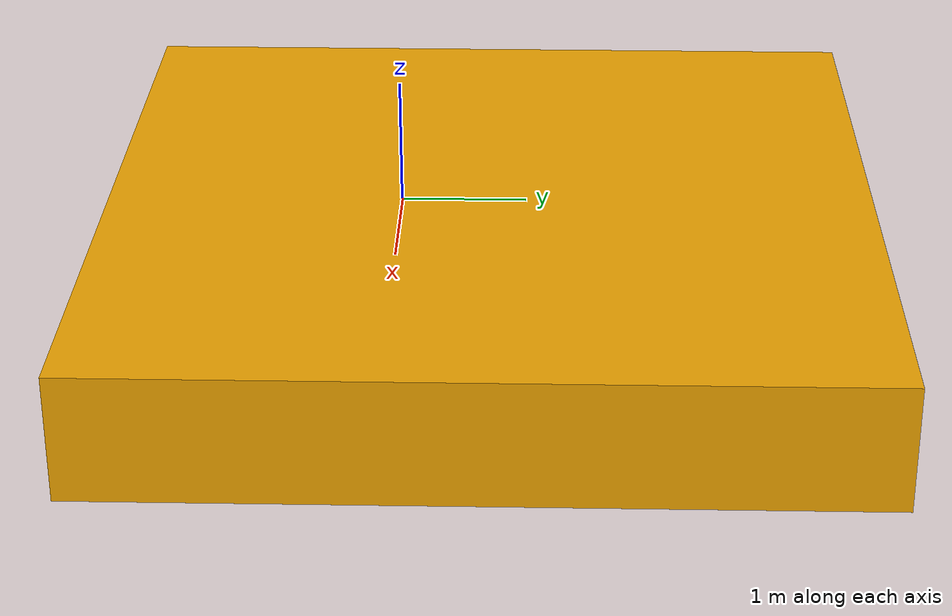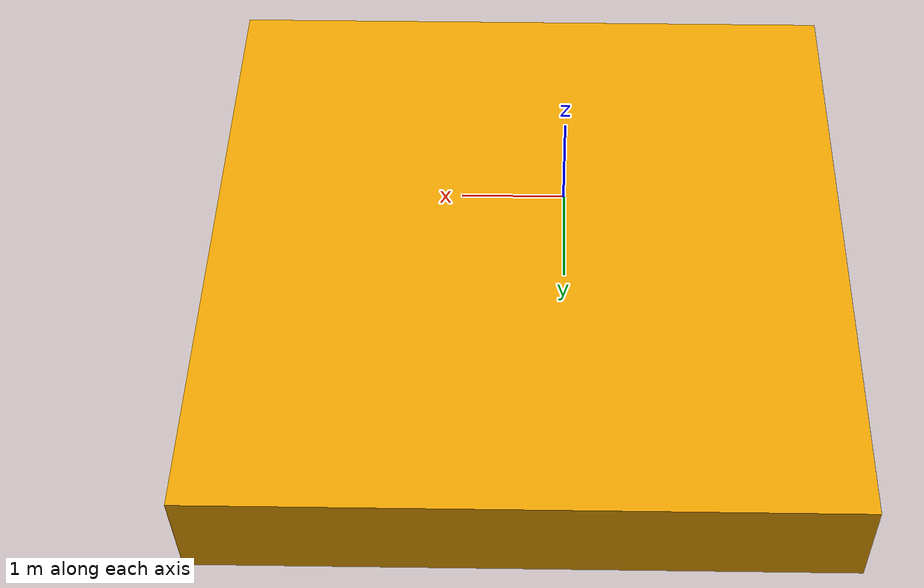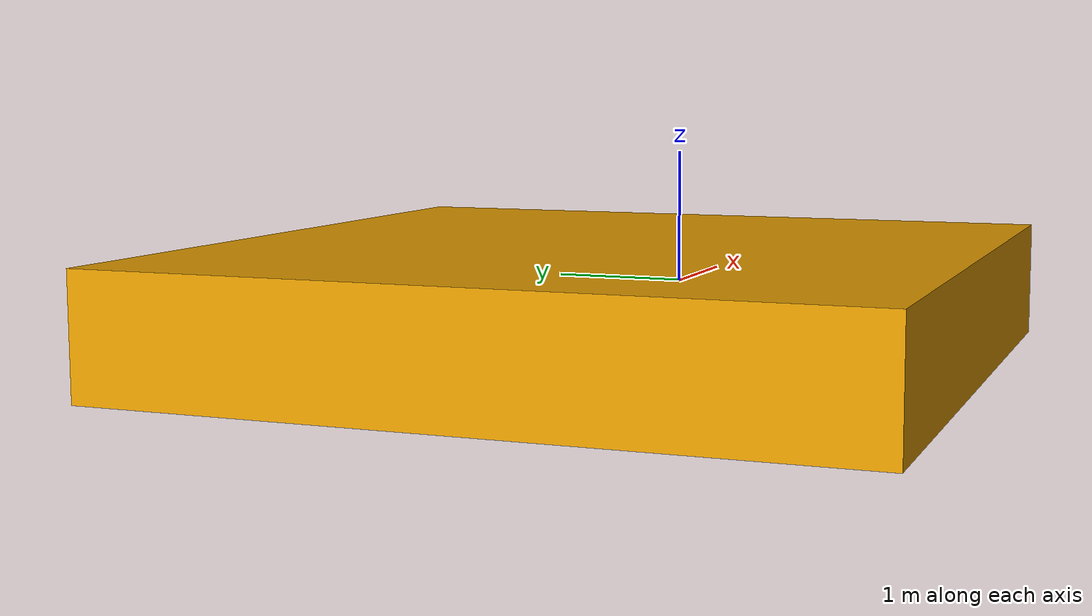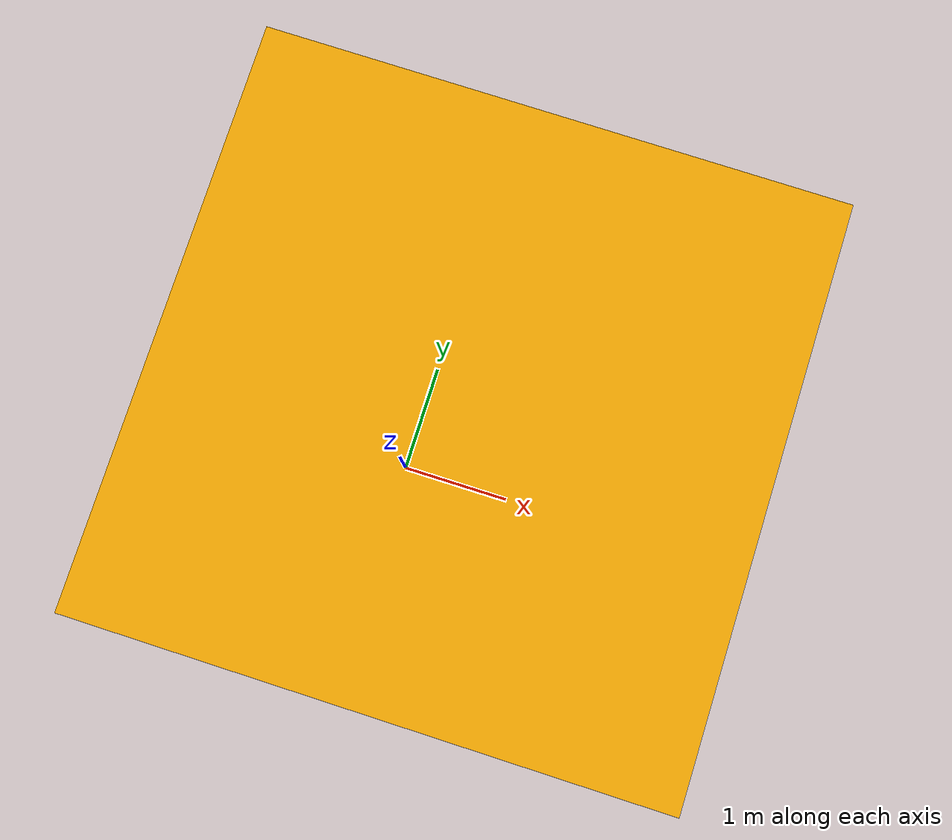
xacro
<robot name="robot">
  <link name="crack_Cube_link">
    <inertial>
      <origin rpy="0 0 0" xyz="0 0 0" />
      <mass value="1" />
      <inertia ixx="1" ixy="0" ixz="0" iyy="1" iyz="0" izz="1" />
    </inertial>
    <visual>
      <origin rpy="0 0 0" xyz="0 0 0" />
      <geometry>
        <mesh filename="package://jackal_velodyne/meshes/crack_Cube.dae" />
      </geometry>
    </visual>
    <collision>
      <origin rpy="0 0 0" xyz="0 0 0" />
      <geometry>
        <mesh filename="package://jackal_velodyne/meshes/crack_Cube.dae" />
      </geometry>
    </collision>
  </link>

  <gazebo> <static>true</static></gazebo>
</robot>
